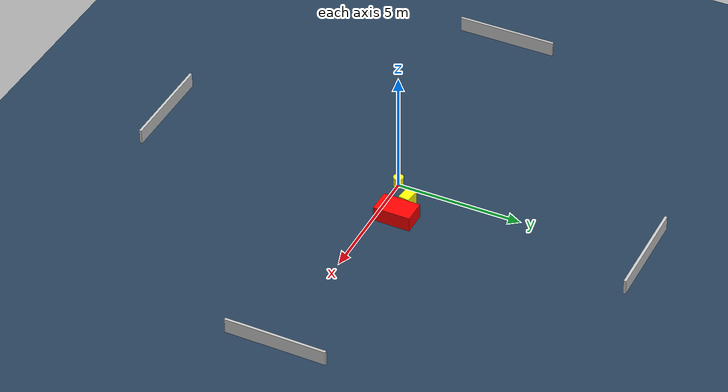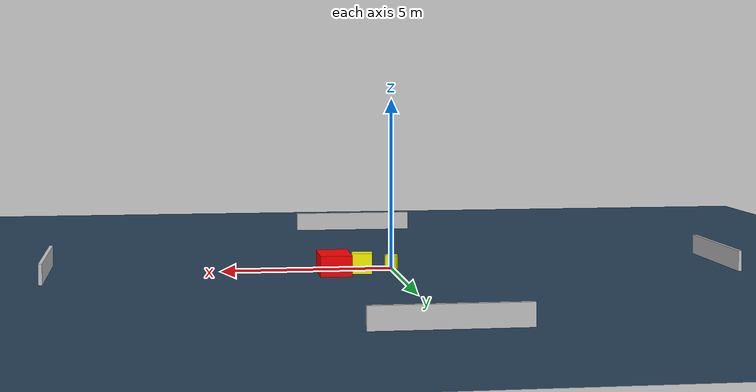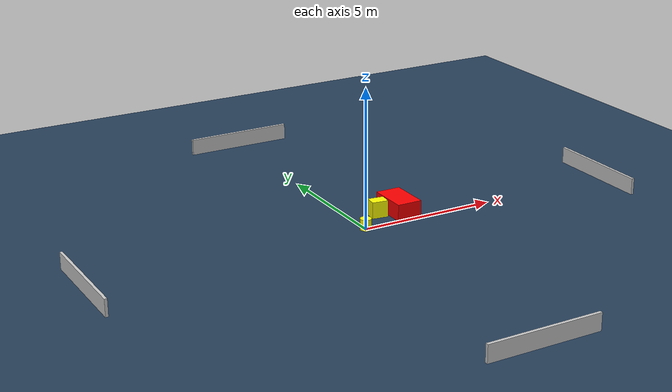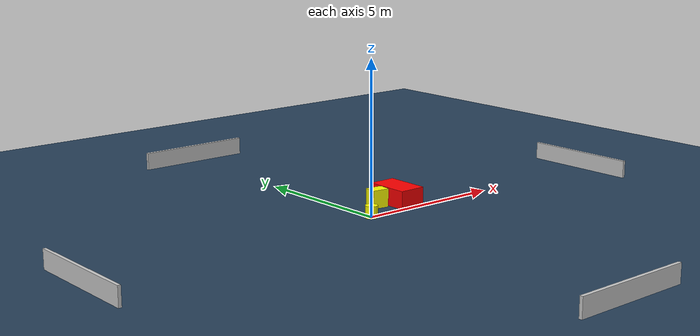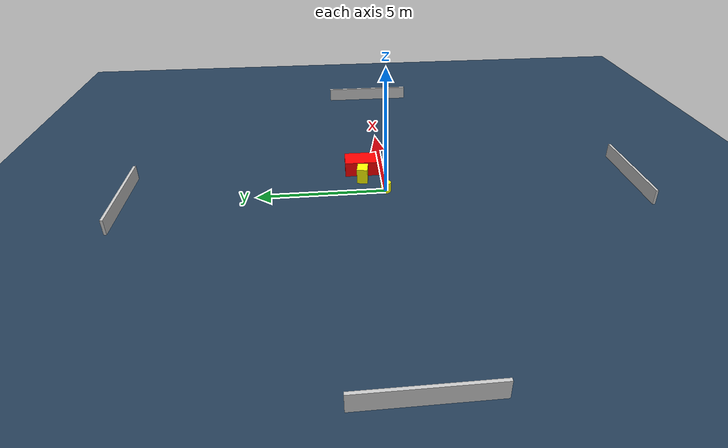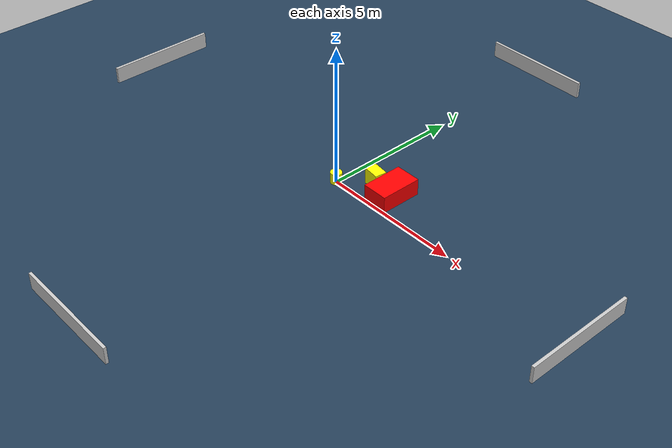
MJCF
<?xml version="1.0" ?>
<mujoco model="generated_environment">
  <option timestep="0.01" integrator="RK4" cone="elliptic"/>
  <default>
    <geom density="1"/>
  </default>
  <asset>
    <texture builtin="gradient" height="3072" name="skybox" rgb1="0.3 0.5 0.7" rgb2="0 0 0" type="skybox" width="512"/>
    <texture builtin="checker" height="300" name="groundplane" rgb1="0.2 0.3 0.4" rgb2="0.1 0.2 0.3" type="2d" width="300"/>
    <material name="groundplane" reflectance="0.2" texrepeat="5 5" texture="groundplane"/>
  </asset>
  <worldbody>
    <light dir="0 0 -1" directional="true" pos="0 0 1.5"/>
    <geom condim="3" friction="0.5 0.005 0.001" material="groundplane" name="floor" pos="0 0 0" size="0 0 0.05" type="plane"/>
    <body name="walls">
      <geom name="wall_1" condim="4" pos="-10.0 0.0 0.3" rgba="0.800000011920929 0.800000011920929 0.800000011920929 1.0" size="0.05 2.0 0.3" type="box"/>
      <geom name="wall_2" condim="4" pos="10.0 0.0 0.3" rgba="0.800000011920929 0.800000011920929 0.800000011920929 1.0" size="0.05 2.0 0.3" type="box"/>
      <geom name="wall_3" condim="4" pos="0.0 -10.0 0.3" rgba="0.800000011920929 0.800000011920929 0.800000011920929 1.0" size="2.0 0.05 0.3" type="box"/>
      <geom name="wall_4" condim="4" pos="0.0 10.0 0.3" rgba="0.800000011920929 0.800000011920929 0.800000011920929 1.0" size="2.0 0.05 0.3" type="box"/>
    </body>
    <body name="robot">
      <joint name="joint_x" type="slide" pos="0 0 0" axis="1 0 0"/>
      <joint name="joint_y" type="slide" pos="0 0 0" axis="0 1 0"/>
      <geom name="robot" type="cylinder" pos="0.0 0.0 0.2" size="0.2 0.2 0.0" mass="5.0" friction="1.0 0.005 0.0001" condim="4" rgba="1.0 1.0 0.0 1.0"/>
    </body>
    <body name="obstacle_1_movable">
      <geom name="obstacle_1_movable" condim="4" pos="0.980176526518028 0.8464422033491514 0.3" euler="0 0 82.61245923560318" friction="0.0 0.005 0.001" rgba="1.0 1.0 0.0 1.0" size="0.21069205782288067 0.2896979053834052 0.3" type="box" mass="0.1"/>
      <joint type="free"/>
    </body>
    <body name="obstacle_2_static">
      <geom name="obstacle_2_static" condim="4" pos="1.7821611329277451 0.7802256822101552 0.3" euler="0 0 359.6652514316024" friction="0.0 0.005 0.001" rgba="1.0 0.0 0.0 1.0" size="0.46036548520864906 0.744278040406513 0.3" type="box"/>
    </body>
  </worldbody>
  <actuator>
    <motor name="actuator_x" joint="joint_x" gear="1" ctrlrange="-1 1"/>
    <motor name="actuator_y" joint="joint_y" gear="1" ctrlrange="-1 1"/>
  </actuator>
</mujoco>
